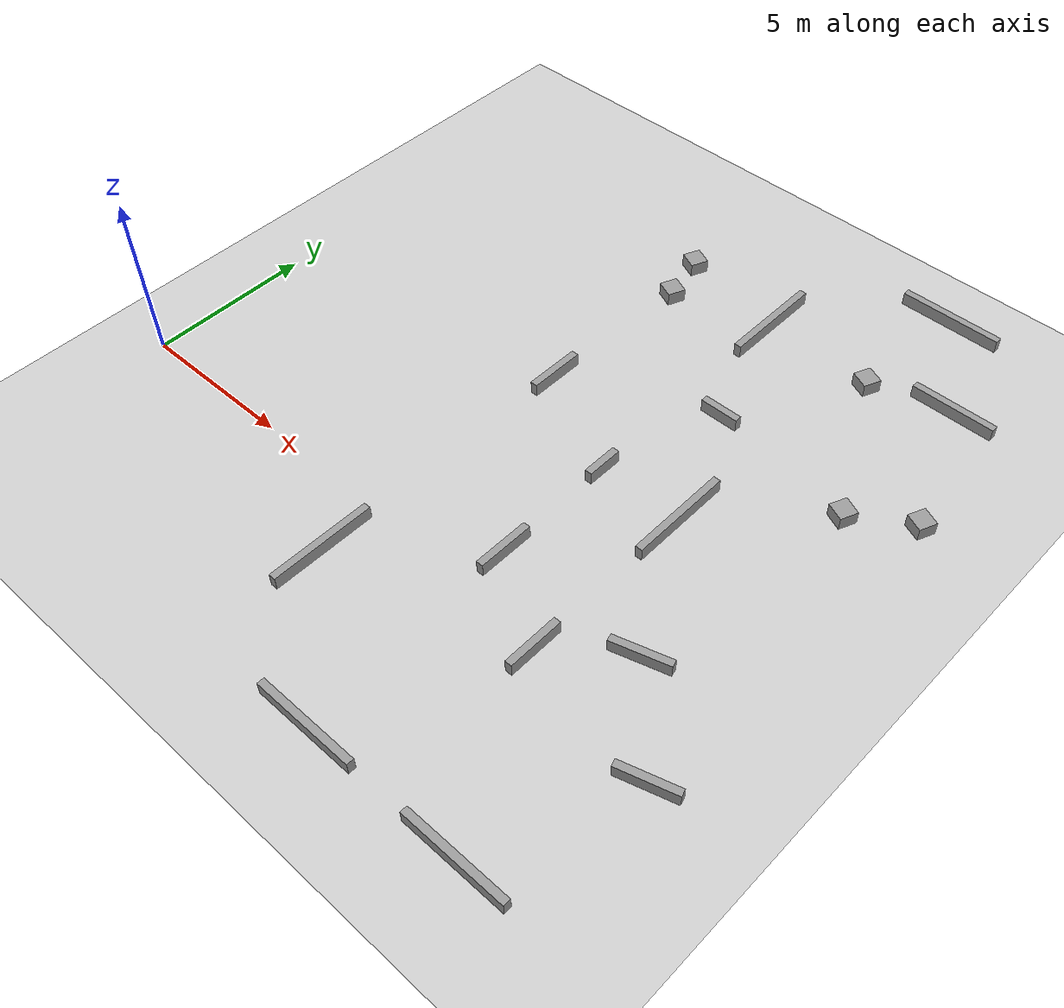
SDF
<sdf version="1.6">
 <world name="default">
  <model name="ground_plane">
   <static>1</static>
   <link name="link">
    <collision name="collision">
     <geometry><plane><normal>0 0 1</normal><size>100 100</size></plane></geometry>
     <surface>
      <contact><collide_bitmask>65535</collide_bitmask></contact>
      <friction><ode><mu>100</mu><mu2>50</mu2></ode></friction>
     </surface>
    </collision>
    <visual name="visual">
     <cast_shadows>0</cast_shadows>
     <geometry><plane><normal>0 0 1</normal><size>100 100</size></plane></geometry>
     <material>
      <script><uri>file://media/materials/scripts/gazebo.material</uri><name>Gazebo/Grey</name></script>
     </material>
    </visual>
   </link>
  </model>
  <model name="maze">
   <link name="link_4_clone_0_clone_clone_1_clone_0">
    <pose>-2.67814 -10.6624 9e-06 0 -0 0</pose>
    <inertial>
     <mass>4.30693</mass>
     <inertia><ixx>0.46587</ixx><ixy>0</ixy><ixz>0</ixz><iyy>22.6991</iyy><iyz>0</iyz><izz>22.4471</izz></inertia>
    </inertial>
    <visual name="visual">
     <geometry><box><size>3.1558 0.218362 0.4</size></box></geometry>
     <material>
      <lighting>1</lighting>
      <script><uri>file://media/materials/scripts/gazebo.material</uri><name>Gazebo/Grey</name></script>
      <ambient>0.3 0.3 0.3 1</ambient>
      <diffuse>0.7 0.7 0.7 1</diffuse>
      <specular>0.01 0.01 0.01 1</specular>
      <emissive>0 0 0 1</emissive>
      <shader type="pixel"/>
     </material>
    </visual>
    <collision name="collision">
     <geometry><box><size>3.1558 0.218362 0.4</size></box></geometry>
     <surface>
      <friction>
       <ode><mu>1</mu><mu2>1</mu2><fdir1>0 0 0</fdir1><slip1>0</slip1><slip2>0</slip2></ode>
       <torsional>
        <coefficient>1</coefficient>
        <patch_radius>0</patch_radius>
        <surface_radius>0</surface_radius>
        <use_patch_radius>1</use_patch_radius>
        <ode><slip>0</slip></ode>
       </torsional>
      </friction>
      <bounce><restitution_coefficient>0</restitution_coefficient><threshold>1e+06</threshold></bounce>
      <contact>
       <collide_without_contact>0</collide_without_contact>
       <collide_without_contact_bitmask>1</collide_without_contact_bitmask>
       <collide_bitmask>1</collide_bitmask>
       <ode>
        <soft_cfm>0</soft_cfm>
        <soft_erp>0.2</soft_erp>
        <kp>1e+13</kp>
        <kd>1</kd>
        <max_vel>0.01</max_vel>
        <min_depth>0</min_depth>
       </ode>
       <bullet>
        <split_impulse>1</split_impulse>
        <split_impulse_penetration_threshold>-0.01</split_impulse_penetration_threshold>
        <soft_cfm>0</soft_cfm>
        <soft_erp>0.2</soft_erp>
        <kp>1e+13</kp>
        <kd>1</kd>
       </bullet>
      </contact>
     </surface>
    </collision>
   </link>
   <link name="link_4_clone_0_clone_clone_1_clone_0_clone">
    <pose>2.19804 -10.643 9e-06 0 -0 0</pose>
    <inertial>
     <mass>4.30693</mass>
     <inertia><ixx>0.46587</ixx><ixy>0</ixy><ixz>0</ixz><iyy>22.6991</iyy><iyz>0</iyz><izz>22.4471</izz></inertia>
    </inertial>
    <visual name="visual">
     <geometry><box><size>3.1558 0.218362 0.4</size></box></geometry>
     <material>
      <lighting>1</lighting>
      <script><uri>file://media/materials/scripts/gazebo.material</uri><name>Gazebo/Grey</name></script>
      <ambient>0.3 0.3 0.3 1</ambient>
      <diffuse>0.7 0.7 0.7 1</diffuse>
      <specular>0.01 0.01 0.01 1</specular>
      <emissive>0 0 0 1</emissive>
      <shader type="pixel"/>
     </material>
    </visual>
    <collision name="collision">
     <geometry><box><size>3.1558 0.218362 0.4</size></box></geometry>
     <surface>
      <friction>
       <ode><mu>1</mu><mu2>1</mu2><fdir1>0 0 0</fdir1><slip1>0</slip1><slip2>0</slip2></ode>
       <torsional>
        <coefficient>1</coefficient>
        <patch_radius>0</patch_radius>
        <surface_radius>0</surface_radius>
        <use_patch_radius>1</use_patch_radius>
        <ode><slip>0</slip></ode>
       </torsional>
      </friction>
      <bounce><restitution_coefficient>0</restitution_coefficient><threshold>1e+06</threshold></bounce>
      <contact>
       <collide_without_contact>0</collide_without_contact>
       <collide_without_contact_bitmask>1</collide_without_contact_bitmask>
       <collide_bitmask>1</collide_bitmask>
       <ode>
        <soft_cfm>0</soft_cfm>
        <soft_erp>0.2</soft_erp>
        <kp>1e+13</kp>
        <kd>1</kd>
        <max_vel>0.01</max_vel>
        <min_depth>0</min_depth>
       </ode>
       <bullet>
        <split_impulse>1</split_impulse>
        <split_impulse_penetration_threshold>-0.01</split_impulse_penetration_threshold>
        <soft_cfm>0</soft_cfm>
        <soft_erp>0.2</soft_erp>
        <kp>1e+13</kp>
        <kd>1</kd>
       </bullet>
      </contact>
     </surface>
    </collision>
   </link>
   <link name="link_4_clone_0_clone_clone_1_clone_0_clone_0">
    <pose>0.695253 11.0512 9e-06 0 -0 0</pose>
    <inertial>
     <mass>4.30693</mass>
     <inertia><ixx>0.46587</ixx><ixy>0</ixy><ixz>0</ixz><iyy>22.6991</iyy><iyz>0</iyz><izz>22.4471</izz></inertia>
    </inertial>
    <visual name="visual">
     <geometry><box><size>3.1558 0.218362 0.4</size></box></geometry>
     <material>
      <lighting>1</lighting>
      <script><uri>file://media/materials/scripts/gazebo.material</uri><name>Gazebo/Grey</name></script>
      <ambient>0.3 0.3 0.3 1</ambient>
      <diffuse>0.7 0.7 0.7 1</diffuse>
      <specular>0.01 0.01 0.01 1</specular>
      <emissive>0 0 0 1</emissive>
      <shader type="pixel"/>
     </material>
    </visual>
    <collision name="collision">
     <geometry><box><size>3.1558 0.218362 0.4</size></box></geometry>
     <surface>
      <friction>
       <ode><mu>1</mu><mu2>1</mu2><fdir1>0 0 0</fdir1><slip1>0</slip1><slip2>0</slip2></ode>
       <torsional>
        <coefficient>1</coefficient>
        <patch_radius>0</patch_radius>
        <surface_radius>0</surface_radius>
        <use_patch_radius>1</use_patch_radius>
        <ode><slip>0</slip></ode>
       </torsional>
      </friction>
      <bounce><restitution_coefficient>0</restitution_coefficient><threshold>1e+06</threshold></bounce>
      <contact>
       <collide_without_contact>0</collide_without_contact>
       <collide_without_contact_bitmask>1</collide_without_contact_bitmask>
       <collide_bitmask>1</collide_bitmask>
       <ode>
        <soft_cfm>0</soft_cfm>
        <soft_erp>0.2</soft_erp>
        <kp>1e+13</kp>
        <kd>1</kd>
        <max_vel>0.01</max_vel>
        <min_depth>0</min_depth>
       </ode>
       <bullet>
        <split_impulse>1</split_impulse>
        <split_impulse_penetration_threshold>-0.01</split_impulse_penetration_threshold>
        <soft_cfm>0</soft_cfm>
        <soft_erp>0.2</soft_erp>
        <kp>1e+13</kp>
        <kd>1</kd>
       </bullet>
      </contact>
     </surface>
    </collision>
   </link>
   <link name="link_4_clone_0_clone_clone_1_clone_clone">
    <pose>2.76705 7.92871 9e-06 0 -0 0</pose>
    <inertial>
     <mass>3.50538</mass>
     <inertia><ixx>0.379168</ixx><ixy>0</ixy><ixz>0</ixz><iyy>12.3366</iyy><iyz>0</iyz><izz>12.1315</izz></inertia>
    </inertial>
    <visual name="visual">
     <geometry><box><size>2.56849 0.218362 0.4</size></box></geometry>
     <material>
      <lighting>1</lighting>
      <script><uri>file://media/materials/scripts/gazebo.material</uri><name>Gazebo/Grey</name></script>
      <ambient>0.3 0.3 0.3 1</ambient>
      <diffuse>0.7 0.7 0.7 1</diffuse>
      <specular>0.01 0.01 0.01 1</specular>
      <emissive>0 0 0 1</emissive>
      <shader type="pixel"/>
     </material>
    </visual>
    <collision name="collision">
     <geometry><box><size>2.56849 0.218362 0.4</size></box></geometry>
     <surface>
      <friction>
       <ode><mu>1</mu><mu2>1</mu2><fdir1>0 0 0</fdir1><slip1>0</slip1><slip2>0</slip2></ode>
       <torsional>
        <coefficient>1</coefficient>
        <patch_radius>0</patch_radius>
        <surface_radius>0</surface_radius>
        <use_patch_radius>1</use_patch_radius>
        <ode><slip>0</slip></ode>
       </torsional>
      </friction>
      <bounce><restitution_coefficient>0</restitution_coefficient><threshold>1e+06</threshold></bounce>
      <contact>
       <collide_without_contact>0</collide_without_contact>
       <collide_without_contact_bitmask>1</collide_without_contact_bitmask>
       <collide_bitmask>1</collide_bitmask>
       <ode>
        <soft_cfm>0</soft_cfm>
        <soft_erp>0.2</soft_erp>
        <kp>1e+13</kp>
        <kd>1</kd>
        <max_vel>0.01</max_vel>
        <min_depth>0</min_depth>
       </ode>
       <bullet>
        <split_impulse>1</split_impulse>
        <split_impulse_penetration_threshold>-0.01</split_impulse_penetration_threshold>
        <soft_cfm>0</soft_cfm>
        <soft_erp>0.2</soft_erp>
        <kp>1e+13</kp>
        <kd>1</kd>
       </bullet>
      </contact>
     </surface>
    </collision>
   </link>
   <link name="new_wall">
    <pose>-1.9 3.51 9e-06 0 -0 0</pose>
    <inertial>
     <mass>3.50538</mass>
     <inertia><ixx>0.379168</ixx><ixy>0</ixy><ixz>0</ixz><iyy>12.3366</iyy><iyz>0</iyz><izz>12.1315</izz></inertia>
    </inertial>
    <visual name="visual">
     <geometry><box><size>1.2 0.218362 0.4</size></box></geometry>
     <material>
      <lighting>1</lighting>
      <script><uri>file://media/materials/scripts/gazebo.material</uri><name>Gazebo/Grey</name></script>
      <ambient>0.3 0.3 0.3 1</ambient>
      <diffuse>0.7 0.7 0.7 1</diffuse>
      <specular>0.01 0.01 0.01 1</specular>
      <emissive>0 0 0 1</emissive>
      <shader type="pixel"/>
     </material>
    </visual>
    <collision name="collision">
     <geometry><box><size>2.56849 0.218362 0.4</size></box></geometry>
     <surface>
      <friction>
       <ode><mu>1</mu><mu2>1</mu2><fdir1>0 0 0</fdir1><slip1>0</slip1><slip2>0</slip2></ode>
       <torsional>
        <coefficient>1</coefficient>
        <patch_radius>0</patch_radius>
        <surface_radius>0</surface_radius>
        <use_patch_radius>1</use_patch_radius>
        <ode><slip>0</slip></ode>
       </torsional>
      </friction>
      <bounce><restitution_coefficient>0</restitution_coefficient><threshold>1e+06</threshold></bounce>
      <contact>
       <collide_without_contact>0</collide_without_contact>
       <collide_without_contact_bitmask>1</collide_without_contact_bitmask>
       <collide_bitmask>1</collide_bitmask>
       <ode>
        <soft_cfm>0</soft_cfm>
        <soft_erp>0.2</soft_erp>
        <kp>1e+13</kp>
        <kd>1</kd>
        <max_vel>0.01</max_vel>
        <min_depth>0</min_depth>
       </ode>
       <bullet>
        <split_impulse>1</split_impulse>
        <split_impulse_penetration_threshold>-0.01</split_impulse_penetration_threshold>
        <soft_cfm>0</soft_cfm>
        <soft_erp>0.2</soft_erp>
        <kp>1e+13</kp>
        <kd>1</kd>
       </bullet>
      </contact>
     </surface>
    </collision>
   </link>
   <link name="link_4_clone_1_clone_1">
    <pose>-6.43669 -6.98415 9e-06 0 0 -1.56693</pose>
    <inertial>
     <mass>4.30693</mass>
     <inertia><ixx>0.46587</ixx><ixy>0</ixy><ixz>0</ixz><iyy>22.6991</iyy><iyz>0</iyz><izz>22.4471</izz></inertia>
    </inertial>
    <visual name="visual">
     <geometry><box><size>3.1558 0.218362 0.4</size></box></geometry>
     <material>
      <lighting>1</lighting>
      <script><uri>file://media/materials/scripts/gazebo.material</uri><name>Gazebo/Grey</name></script>
      <ambient>0.3 0.3 0.3 1</ambient>
      <diffuse>0.7 0.7 0.7 1</diffuse>
      <specular>0.01 0.01 0.01 1</specular>
      <emissive>0 0 0 1</emissive>
      <shader type="pixel"/>
     </material>
    </visual>
    <collision name="collision">
     <geometry><box><size>3.1558 0.218362 0.4</size></box></geometry>
     <surface>
      <friction>
       <ode><mu>1</mu><mu2>1</mu2><fdir1>0 0 0</fdir1><slip1>0</slip1><slip2>0</slip2></ode>
       <torsional>
        <coefficient>1</coefficient>
        <patch_radius>0</patch_radius>
        <surface_radius>0</surface_radius>
        <use_patch_radius>1</use_patch_radius>
        <ode><slip>0</slip></ode>
       </torsional>
      </friction>
      <bounce><restitution_coefficient>0</restitution_coefficient><threshold>1e+06</threshold></bounce>
      <contact>
       <collide_without_contact>0</collide_without_contact>
       <collide_without_contact_bitmask>1</collide_without_contact_bitmask>
       <collide_bitmask>1</collide_bitmask>
       <ode>
        <soft_cfm>0</soft_cfm>
        <soft_erp>0.2</soft_erp>
        <kp>1e+13</kp>
        <kd>1</kd>
        <max_vel>0.01</max_vel>
        <min_depth>0</min_depth>
       </ode>
       <bullet>
        <split_impulse>1</split_impulse>
        <split_impulse_penetration_threshold>-0.01</split_impulse_penetration_threshold>
        <soft_cfm>0</soft_cfm>
        <soft_erp>0.2</soft_erp>
        <kp>1e+13</kp>
        <kd>1</kd>
       </bullet>
      </contact>
     </surface>
    </collision>
   </link>
   <link name="link_4_clone_1_clone_1_clone">
    <pose>-6.35585 1.56416 9e-06 0 0 -1.56693</pose>
    <inertial>
     <mass>2.3361</mass>
     <inertia><ixx>0.25269</ixx><ixy>0</ixy><ixz>0</ixz><iyy>3.75965</iyy><iyz>0</iyz><izz>3.62299</izz></inertia>
    </inertial>
    <visual name="visual">
     <geometry><box><size>1.71172 0.218362 0.4</size></box></geometry>
     <material>
      <lighting>1</lighting>
      <script><uri>file://media/materials/scripts/gazebo.material</uri><name>Gazebo/Grey</name></script>
      <ambient>0.3 0.3 0.3 1</ambient>
      <diffuse>0.7 0.7 0.7 1</diffuse>
      <specular>0.01 0.01 0.01 1</specular>
      <emissive>0 0 0 1</emissive>
      <shader type="pixel"/>
     </material>
    </visual>
    <collision name="collision">
     <geometry><box><size>1.71172 0.218362 0.4</size></box></geometry>
     <surface>
      <friction>
       <ode><mu>1</mu><mu2>1</mu2><fdir1>0 0 0</fdir1><slip1>0</slip1><slip2>0</slip2></ode>
       <torsional>
        <coefficient>1</coefficient>
        <patch_radius>0</patch_radius>
        <surface_radius>0</surface_radius>
        <use_patch_radius>1</use_patch_radius>
        <ode><slip>0</slip></ode>
       </torsional>
      </friction>
      <bounce><restitution_coefficient>0</restitution_coefficient><threshold>1e+06</threshold></bounce>
      <contact>
       <collide_without_contact>0</collide_without_contact>
       <collide_without_contact_bitmask>1</collide_without_contact_bitmask>
       <collide_bitmask>1</collide_bitmask>
       <ode>
        <soft_cfm>0</soft_cfm>
        <soft_erp>0.2</soft_erp>
        <kp>1e+13</kp>
        <kd>1</kd>
        <max_vel>0.01</max_vel>
        <min_depth>0</min_depth>
       </ode>
       <bullet>
        <split_impulse>1</split_impulse>
        <split_impulse_penetration_threshold>-0.01</split_impulse_penetration_threshold>
        <soft_cfm>0</soft_cfm>
        <soft_erp>0.2</soft_erp>
        <kp>1e+13</kp>
        <kd>1</kd>
       </bullet>
      </contact>
     </surface>
    </collision>
   </link>
   <link name="link_4_clone_1_clone_1_clone_0">
    <pose>-0.36051 -0.154697 9e-06 0 0 -1.56693</pose>
    <inertial>
     <mass>4.30693</mass>
     <inertia><ixx>0.46587</ixx><ixy>0</ixy><ixz>0</ixz><iyy>22.6991</iyy><iyz>0</iyz><izz>22.4471</izz></inertia>
    </inertial>
    <visual name="visual">
     <geometry><box><size>3.1558 0.218362 0.4</size></box></geometry>
     <material>
      <lighting>1</lighting>
      <script><uri>file://media/materials/scripts/gazebo.material</uri><name>Gazebo/Grey</name></script>
      <ambient>0.3 0.3 0.3 1</ambient>
      <diffuse>0.7 0.7 0.7 1</diffuse>
      <specular>0.01 0.01 0.01 1</specular>
      <emissive>0 0 0 1</emissive>
      <shader type="pixel"/>
     </material>
    </visual>
    <collision name="collision">
     <geometry><box><size>3.1558 0.218362 0.4</size></box></geometry>
     <surface>
      <friction>
       <ode><mu>1</mu><mu2>1</mu2><fdir1>0 0 0</fdir1><slip1>0</slip1><slip2>0</slip2></ode>
       <torsional>
        <coefficient>1</coefficient>
        <patch_radius>0</patch_radius>
        <surface_radius>0</surface_radius>
        <use_patch_radius>1</use_patch_radius>
        <ode><slip>0</slip></ode>
       </torsional>
      </friction>
      <bounce><restitution_coefficient>0</restitution_coefficient><threshold>1e+06</threshold></bounce>
      <contact>
       <collide_without_contact>0</collide_without_contact>
       <collide_without_contact_bitmask>1</collide_without_contact_bitmask>
       <collide_bitmask>1</collide_bitmask>
       <ode>
        <soft_cfm>0</soft_cfm>
        <soft_erp>0.2</soft_erp>
        <kp>1e+13</kp>
        <kd>1</kd>
        <max_vel>0.01</max_vel>
        <min_depth>0</min_depth>
       </ode>
       <bullet>
        <split_impulse>1</split_impulse>
        <split_impulse_penetration_threshold>-0.01</split_impulse_penetration_threshold>
        <soft_cfm>0</soft_cfm>
        <soft_erp>0.2</soft_erp>
        <kp>1e+13</kp>
        <kd>1</kd>
       </bullet>
      </contact>
     </surface>
    </collision>
   </link>
   <link name="link_4_clone_1_clone_1_clone_2">
    <pose>-3.1358 7.375 9e-06 0 0 -1.56693</pose>
    <inertial>
     <mass>4.30693</mass>
     <inertia><ixx>0.46587</ixx><ixy>0</ixy><ixz>0</ixz><iyy>22.6991</iyy><iyz>0</iyz><izz>22.4471</izz></inertia>
    </inertial>
    <visual name="visual">
     <geometry><box><size>3.1558 0.218362 0.4</size></box></geometry>
     <material>
      <lighting>1</lighting>
      <script><uri>file://media/materials/scripts/gazebo.material</uri><name>Gazebo/Grey</name></script>
      <ambient>0.3 0.3 0.3 1</ambient>
      <diffuse>0.7 0.7 0.7 1</diffuse>
      <specular>0.01 0.01 0.01 1</specular>
      <emissive>0 0 0 1</emissive>
      <shader type="pixel"/>
     </material>
    </visual>
    <collision name="collision">
     <geometry><box><size>3.1558 0.218362 0.4</size></box></geometry>
     <surface>
      <friction>
       <ode><mu>1</mu><mu2>1</mu2><fdir1>0 0 0</fdir1><slip1>0</slip1><slip2>0</slip2></ode>
       <torsional>
        <coefficient>1</coefficient>
        <patch_radius>0</patch_radius>
        <surface_radius>0</surface_radius>
        <use_patch_radius>1</use_patch_radius>
        <ode><slip>0</slip></ode>
       </torsional>
      </friction>
      <bounce><restitution_coefficient>0</restitution_coefficient><threshold>1e+06</threshold></bounce>
      <contact>
       <collide_without_contact>0</collide_without_contact>
       <collide_without_contact_bitmask>1</collide_without_contact_bitmask>
       <collide_bitmask>1</collide_bitmask>
       <ode>
        <soft_cfm>0</soft_cfm>
        <soft_erp>0.2</soft_erp>
        <kp>1e+13</kp>
        <kd>1</kd>
        <max_vel>0.01</max_vel>
        <min_depth>0</min_depth>
       </ode>
       <bullet>
        <split_impulse>1</split_impulse>
        <split_impulse_penetration_threshold>-0.01</split_impulse_penetration_threshold>
        <soft_cfm>0</soft_cfm>
        <soft_erp>0.2</soft_erp>
        <kp>1e+13</kp>
        <kd>1</kd>
       </bullet>
      </contact>
     </surface>
    </collision>
   </link>
   <link name="link_4_clone_1_clone_1_clone_clone">
    <pose>-3.01465 -0.148136 9e-06 0 0 -1.56693</pose>
    <inertial>
     <mass>1.50003</mass>
     <inertia>
      <ixx>0.162255</ixx>
      <ixy>0</ixy>
      <ixz>0</ixz>
      <iyy>1.06881</iyy>
      <iyz>0</iyz>
      <izz>0.981058</izz>
     </inertia>
    </inertial>
    <visual name="visual">
     <geometry><box><size>1.09911 0.218362 0.4</size></box></geometry>
     <material>
      <lighting>1</lighting>
      <script><uri>file://media/materials/scripts/gazebo.material</uri><name>Gazebo/Grey</name></script>
      <ambient>0.3 0.3 0.3 1</ambient>
      <diffuse>0.7 0.7 0.7 1</diffuse>
      <specular>0.01 0.01 0.01 1</specular>
      <emissive>0 0 0 1</emissive>
      <shader type="pixel"/>
     </material>
    </visual>
    <collision name="collision">
     <geometry><box><size>1.09911 0.218362 0.4</size></box></geometry>
     <surface>
      <friction>
       <ode><mu>1</mu><mu2>1</mu2><fdir1>0 0 0</fdir1><slip1>0</slip1><slip2>0</slip2></ode>
       <torsional>
        <coefficient>1</coefficient>
        <patch_radius>0</patch_radius>
        <surface_radius>0</surface_radius>
        <use_patch_radius>1</use_patch_radius>
        <ode><slip>0</slip></ode>
       </torsional>
      </friction>
      <bounce><restitution_coefficient>0</restitution_coefficient><threshold>1e+06</threshold></bounce>
      <contact>
       <collide_without_contact>0</collide_without_contact>
       <collide_without_contact_bitmask>1</collide_without_contact_bitmask>
       <collide_bitmask>1</collide_bitmask>
       <ode>
        <soft_cfm>0</soft_cfm>
        <soft_erp>0.2</soft_erp>
        <kp>1e+13</kp>
        <kd>1</kd>
        <max_vel>0.01</max_vel>
        <min_depth>0</min_depth>
       </ode>
       <bullet>
        <split_impulse>1</split_impulse>
        <split_impulse_penetration_threshold>-0.01</split_impulse_penetration_threshold>
        <soft_cfm>0</soft_cfm>
        <soft_erp>0.2</soft_erp>
        <kp>1e+13</kp>
        <kd>1</kd>
       </bullet>
      </contact>
     </surface>
    </collision>
   </link>
   <link name="link_4_clone_1_clone_1_clone_clone_0">
    <pose>-2.95631 -3.9379 9e-06 0 0 -1.56693</pose>
    <inertial>
     <mass>2.3361</mass>
     <inertia><ixx>0.25269</ixx><ixy>0</ixy><ixz>0</ixz><iyy>3.75965</iyy><iyz>0</iyz><izz>3.62299</izz></inertia>
    </inertial>
    <visual name="visual">
     <geometry><box><size>1.71172 0.218362 0.4</size></box></geometry>
     <material>
      <lighting>1</lighting>
      <script><uri>file://media/materials/scripts/gazebo.material</uri><name>Gazebo/Grey</name></script>
      <ambient>0.3 0.3 0.3 1</ambient>
      <diffuse>0.7 0.7 0.7 1</diffuse>
      <specular>0.01 0.01 0.01 1</specular>
      <emissive>0 0 0 1</emissive>
      <shader type="pixel"/>
     </material>
    </visual>
    <collision name="collision">
     <geometry><box><size>1.71172 0.218362 0.4</size></box></geometry>
     <surface>
      <friction>
       <ode><mu>1</mu><mu2>1</mu2><fdir1>0 0 0</fdir1><slip1>0</slip1><slip2>0</slip2></ode>
       <torsional>
        <coefficient>1</coefficient>
        <patch_radius>0</patch_radius>
        <surface_radius>0</surface_radius>
        <use_patch_radius>1</use_patch_radius>
        <ode><slip>0</slip></ode>
       </torsional>
      </friction>
      <bounce><restitution_coefficient>0</restitution_coefficient><threshold>1e+06</threshold></bounce>
      <contact>
       <collide_without_contact>0</collide_without_contact>
       <collide_without_contact_bitmask>1</collide_without_contact_bitmask>
       <collide_bitmask>1</collide_bitmask>
       <ode>
        <soft_cfm>0</soft_cfm>
        <soft_erp>0.2</soft_erp>
        <kp>1e+13</kp>
        <kd>1</kd>
        <max_vel>0.01</max_vel>
        <min_depth>0</min_depth>
       </ode>
       <bullet>
        <split_impulse>1</split_impulse>
        <split_impulse_penetration_threshold>-0.01</split_impulse_penetration_threshold>
        <soft_cfm>0</soft_cfm>
        <soft_erp>0.2</soft_erp>
        <kp>1e+13</kp>
        <kd>1</kd>
       </bullet>
      </contact>
     </surface>
    </collision>
   </link>
   <link name="link_4_clone_1_clone_1_clone_clone_0_clone">
    <pose>4.03057 -6.47031 9e-06 0 -0 0.2833</pose>
    <inertial>
     <mass>2.3361</mass>
     <inertia><ixx>0.25269</ixx><ixy>0</ixy><ixz>0</ixz><iyy>3.75965</iyy><iyz>0</iyz><izz>3.62299</izz></inertia>
    </inertial>
    <visual name="visual">
     <geometry><box><size>1.71172 0.218362 0.4</size></box></geometry>
     <material>
      <lighting>1</lighting>
      <script><uri>file://media/materials/scripts/gazebo.material</uri><name>Gazebo/Grey</name></script>
      <ambient>0.3 0.3 0.3 1</ambient>
      <diffuse>0.7 0.7 0.7 1</diffuse>
      <specular>0.01 0.01 0.01 1</specular>
      <emissive>0 0 0 1</emissive>
      <shader type="pixel"/>
     </material>
    </visual>
    <collision name="collision">
     <geometry><box><size>1.71172 0.218362 0.4</size></box></geometry>
     <surface>
      <friction>
       <ode><mu>1</mu><mu2>1</mu2><fdir1>0 0 0</fdir1><slip1>0</slip1><slip2>0</slip2></ode>
       <torsional>
        <coefficient>1</coefficient>
        <patch_radius>0</patch_radius>
        <surface_radius>0</surface_radius>
        <use_patch_radius>1</use_patch_radius>
        <ode><slip>0</slip></ode>
       </torsional>
      </friction>
      <bounce><restitution_coefficient>0</restitution_coefficient><threshold>1e+06</threshold></bounce>
      <contact>
       <collide_without_contact>0</collide_without_contact>
       <collide_without_contact_bitmask>1</collide_without_contact_bitmask>
       <collide_bitmask>1</collide_bitmask>
       <ode>
        <soft_cfm>0</soft_cfm>
        <soft_erp>0.2</soft_erp>
        <kp>1e+13</kp>
        <kd>1</kd>
        <max_vel>0.01</max_vel>
        <min_depth>0</min_depth>
       </ode>
       <bullet>
        <split_impulse>1</split_impulse>
        <split_impulse_penetration_threshold>-0.01</split_impulse_penetration_threshold>
        <soft_cfm>0</soft_cfm>
        <soft_erp>0.2</soft_erp>
        <kp>1e+13</kp>
        <kd>1</kd>
       </bullet>
      </contact>
     </surface>
    </collision>
   </link>
   <link name="link_4_clone_1_clone_1_clone_clone_0_clone_0">
    <pose>-0.349699 -5.56946 9e-06 0 0 -1.56693</pose>
    <inertial>
     <mass>2.3361</mass>
     <inertia><ixx>0.25269</ixx><ixy>0</ixy><ixz>0</ixz><iyy>3.75965</iyy><iyz>0</iyz><izz>3.62299</izz></inertia>
    </inertial>
    <visual name="visual">
     <geometry><box><size>1.71172 0.218362 0.4</size></box></geometry>
     <material>
      <lighting>1</lighting>
      <script><uri>file://media/materials/scripts/gazebo.material</uri><name>Gazebo/Grey</name></script>
      <ambient>0.3 0.3 0.3 1</ambient>
      <diffuse>0.7 0.7 0.7 1</diffuse>
      <specular>0.01 0.01 0.01 1</specular>
      <emissive>0 0 0 1</emissive>
      <shader type="pixel"/>
     </material>
    </visual>
    <collision name="collision">
     <geometry><box><size>1.71172 0.218362 0.4</size></box></geometry>
     <surface>
      <friction>
       <ode><mu>1</mu><mu2>1</mu2><fdir1>0 0 0</fdir1><slip1>0</slip1><slip2>0</slip2></ode>
       <torsional>
        <coefficient>1</coefficient>
        <patch_radius>0</patch_radius>
        <surface_radius>0</surface_radius>
        <use_patch_radius>1</use_patch_radius>
        <ode><slip>0</slip></ode>
       </torsional>
      </friction>
      <bounce><restitution_coefficient>0</restitution_coefficient><threshold>1e+06</threshold></bounce>
      <contact>
       <collide_without_contact>0</collide_without_contact>
       <collide_without_contact_bitmask>1</collide_without_contact_bitmask>
       <collide_bitmask>1</collide_bitmask>
       <ode>
        <soft_cfm>0</soft_cfm>
        <soft_erp>0.2</soft_erp>
        <kp>1e+13</kp>
        <kd>1</kd>
        <max_vel>0.01</max_vel>
        <min_depth>0</min_depth>
       </ode>
       <bullet>
        <split_impulse>1</split_impulse>
        <split_impulse_penetration_threshold>-0.01</split_impulse_penetration_threshold>
        <soft_cfm>0</soft_cfm>
        <soft_erp>0.2</soft_erp>
        <kp>1e+13</kp>
        <kd>1</kd>
       </bullet>
      </contact>
     </surface>
    </collision>
   </link>
   <link name="link_4_clone_1_clone_1_clone_clone_0_clone_clone">
    <pose>1.7146 -4.01354 9e-06 0 -0 0.2833</pose>
    <inertial>
     <mass>2.3361</mass>
     <inertia><ixx>0.25269</ixx><ixy>0</ixy><ixz>0</ixz><iyy>3.75965</iyy><iyz>0</iyz><izz>3.62299</izz></inertia>
    </inertial>
    <visual name="visual">
     <geometry><box><size>1.71172 0.218362 0.4</size></box></geometry>
     <material>
      <lighting>1</lighting>
      <script><uri>file://media/materials/scripts/gazebo.material</uri><name>Gazebo/Grey</name></script>
      <ambient>0.3 0.3 0.3 1</ambient>
      <diffuse>0.7 0.7 0.7 1</diffuse>
      <specular>0.01 0.01 0.01 1</specular>
      <emissive>0 0 0 1</emissive>
      <shader type="pixel"/>
     </material>
    </visual>
    <collision name="collision">
     <geometry><box><size>1.71172 0.218362 0.4</size></box></geometry>
     <surface>
      <friction>
       <ode><mu>1</mu><mu2>1</mu2><fdir1>0 0 0</fdir1><slip1>0</slip1><slip2>0</slip2></ode>
       <torsional>
        <coefficient>1</coefficient>
        <patch_radius>0</patch_radius>
        <surface_radius>0</surface_radius>
        <use_patch_radius>1</use_patch_radius>
        <ode><slip>0</slip></ode>
       </torsional>
      </friction>
      <bounce><restitution_coefficient>0</restitution_coefficient><threshold>1e+06</threshold></bounce>
      <contact>
       <collide_without_contact>0</collide_without_contact>
       <collide_without_contact_bitmask>1</collide_without_contact_bitmask>
       <collide_bitmask>1</collide_bitmask>
       <ode>
        <soft_cfm>0</soft_cfm>
        <soft_erp>0.2</soft_erp>
        <kp>1e+13</kp>
        <kd>1</kd>
        <max_vel>0.01</max_vel>
        <min_depth>0</min_depth>
       </ode>
       <bullet>
        <split_impulse>1</split_impulse>
        <split_impulse_penetration_threshold>-0.01</split_impulse_penetration_threshold>
        <soft_cfm>0</soft_cfm>
        <soft_erp>0.2</soft_erp>
        <kp>1e+13</kp>
        <kd>1</kd>
       </bullet>
      </contact>
     </surface>
    </collision>
   </link>
   <link name="engine_1">
    <pose>-6.5 8 9e-06 0 0 -0.406538</pose>
    <inertial>
     <mass>1.94722</mass>
     <inertia><ixx>0.463684</ixx><ixy>0</ixy><ixz>0</ixz><iyy>0.4935</iyy><iyz>0</iyz><izz>0.632648</izz></inertia>
    </inertial>
    <visual name="visual">
     <geometry><box><size>0.571492 0.545164 0.4</size></box></geometry>
     <material>
      <lighting>1</lighting>
      <script><uri>file://media/materials/scripts/gazebo.material</uri><name>Gazebo/Grey</name></script>
      <ambient>0.3 0.3 0.3 1</ambient>
      <diffuse>0.7 0.7 0.7 1</diffuse>
      <specular>0.01 0.01 0.01 1</specular>
      <emissive>0 0 0 1</emissive>
     </material>
    </visual>
    <collision name="collision">
     <geometry><box><size>0.571492 0.545164 0.4</size></box></geometry>
     <surface>
      <friction>
       <ode><mu>1</mu><mu2>1</mu2><fdir1>0 0 0</fdir1><slip1>0</slip1><slip2>0</slip2></ode>
       <torsional>
        <coefficient>1</coefficient>
        <patch_radius>0</patch_radius>
        <surface_radius>0</surface_radius>
        <use_patch_radius>1</use_patch_radius>
        <ode><slip>0</slip></ode>
       </torsional>
      </friction>
      <bounce><restitution_coefficient>0</restitution_coefficient><threshold>1e+06</threshold></bounce>
      <contact>
       <collide_without_contact>0</collide_without_contact>
       <collide_without_contact_bitmask>1</collide_without_contact_bitmask>
       <collide_bitmask>1</collide_bitmask>
       <ode>
        <soft_cfm>0</soft_cfm>
        <soft_erp>0.2</soft_erp>
        <kp>1e+13</kp>
        <kd>1</kd>
        <max_vel>0.01</max_vel>
        <min_depth>0</min_depth>
       </ode>
       <bullet>
        <split_impulse>1</split_impulse>
        <split_impulse_penetration_threshold>-0.01</split_impulse_penetration_threshold>
        <soft_cfm>0</soft_cfm>
        <soft_erp>0.2</soft_erp>
        <kp>1e+13</kp>
        <kd>1</kd>
       </bullet>
      </contact>
     </surface>
    </collision>
   </link>
   <link name="engine_2">
    <pose>-6.1551 6.5 9e-06 0 0 -0.406538</pose>
    <inertial>
     <mass>1.94722</mass>
     <inertia><ixx>0.463684</ixx><ixy>0</ixy><ixz>0</ixz><iyy>0.4935</iyy><iyz>0</iyz><izz>0.632648</izz></inertia>
    </inertial>
    <visual name="visual">
     <geometry><box><size>0.571492 0.545164 0.4</size></box></geometry>
     <material>
      <lighting>1</lighting>
      <script><uri>file://media/materials/scripts/gazebo.material</uri><name>Gazebo/Grey</name></script>
      <ambient>0.3 0.3 0.3 1</ambient>
      <diffuse>0.7 0.7 0.7 1</diffuse>
      <specular>0.01 0.01 0.01 1</specular>
      <emissive>0 0 0 1</emissive>
     </material>
    </visual>
    <collision name="collision">
     <geometry><box><size>0.571492 0.545164 0.4</size></box></geometry>
     <surface>
      <friction>
       <ode><mu>1</mu><mu2>1</mu2><fdir1>0 0 0</fdir1><slip1>0</slip1><slip2>0</slip2></ode>
       <torsional>
        <coefficient>1</coefficient>
        <patch_radius>0</patch_radius>
        <surface_radius>0</surface_radius>
        <use_patch_radius>1</use_patch_radius>
        <ode><slip>0</slip></ode>
       </torsional>
      </friction>
      <bounce><restitution_coefficient>0</restitution_coefficient><threshold>1e+06</threshold></bounce>
      <contact>
       <collide_without_contact>0</collide_without_contact>
       <collide_without_contact_bitmask>1</collide_without_contact_bitmask>
       <collide_bitmask>1</collide_bitmask>
       <ode>
        <soft_cfm>0</soft_cfm>
        <soft_erp>0.2</soft_erp>
        <kp>1e+13</kp>
        <kd>1</kd>
        <max_vel>0.01</max_vel>
        <min_depth>0</min_depth>
       </ode>
       <bullet>
        <split_impulse>1</split_impulse>
        <split_impulse_penetration_threshold>-0.01</split_impulse_penetration_threshold>
        <soft_cfm>0</soft_cfm>
        <soft_erp>0.2</soft_erp>
        <kp>1e+13</kp>
        <kd>1</kd>
       </bullet>
      </contact>
     </surface>
    </collision>
   </link>
   <link name="link_6_clone_clone">
    <pose>2.67865 2.83156 9e-06 0 0 -0.406538</pose>
    <inertial>
     <mass>1.94722</mass>
     <inertia><ixx>0.463684</ixx><ixy>0</ixy><ixz>0</ixz><iyy>0.4935</iyy><iyz>0</iyz><izz>0.632648</izz></inertia>
    </inertial>
    <visual name="visual">
     <geometry><box><size>0.571492 0.545164 0.4</size></box></geometry>
     <material>
      <lighting>1</lighting>
      <script><uri>file://media/materials/scripts/gazebo.material</uri><name>Gazebo/Grey</name></script>
      <ambient>0.3 0.3 0.3 1</ambient>
      <diffuse>0.7 0.7 0.7 1</diffuse>
      <specular>0.01 0.01 0.01 1</specular>
      <emissive>0 0 0 1</emissive>
      <shader type="pixel"/>
     </material>
    </visual>
    <collision name="collision">
     <geometry><box><size>0.571492 0.545164 0.4</size></box></geometry>
     <surface>
      <friction>
       <ode><mu>1</mu><mu2>1</mu2><fdir1>0 0 0</fdir1><slip1>0</slip1><slip2>0</slip2></ode>
       <torsional>
        <coefficient>1</coefficient>
        <patch_radius>0</patch_radius>
        <surface_radius>0</surface_radius>
        <use_patch_radius>1</use_patch_radius>
        <ode><slip>0</slip></ode>
       </torsional>
      </friction>
      <bounce><restitution_coefficient>0</restitution_coefficient><threshold>1e+06</threshold></bounce>
      <contact>
       <collide_without_contact>0</collide_without_contact>
       <collide_without_contact_bitmask>1</collide_without_contact_bitmask>
       <collide_bitmask>1</collide_bitmask>
       <ode>
        <soft_cfm>0</soft_cfm>
        <soft_erp>0.2</soft_erp>
        <kp>1e+13</kp>
        <kd>1</kd>
        <max_vel>0.01</max_vel>
        <min_depth>0</min_depth>
       </ode>
       <bullet>
        <split_impulse>1</split_impulse>
        <split_impulse_penetration_threshold>-0.01</split_impulse_penetration_threshold>
        <soft_cfm>0</soft_cfm>
        <soft_erp>0.2</soft_erp>
        <kp>1e+13</kp>
        <kd>1</kd>
       </bullet>
      </contact>
     </surface>
    </collision>
   </link>
   <link name="link_6_clone_clone_0">
    <pose>4.37408 3.90111 9e-06 0 0 -0.406538</pose>
    <inertial>
     <mass>1.94722</mass>
     <inertia><ixx>0.463684</ixx><ixy>0</ixy><ixz>0</ixz><iyy>0.4935</iyy><iyz>0</iyz><izz>0.632648</izz></inertia>
    </inertial>
    <visual name="visual">
     <geometry><box><size>0.571492 0.545164 0.4</size></box></geometry>
     <material>
      <lighting>1</lighting>
      <script><uri>file://media/materials/scripts/gazebo.material</uri><name>Gazebo/Grey</name></script>
      <ambient>0.3 0.3 0.3 1</ambient>
      <diffuse>0.7 0.7 0.7 1</diffuse>
      <specular>0.01 0.01 0.01 1</specular>
      <emissive>0 0 0 1</emissive>
      <shader type="pixel"/>
     </material>
    </visual>
    <collision name="collision">
     <geometry><box><size>0.571492 0.545164 0.4</size></box></geometry>
     <surface>
      <friction>
       <ode><mu>1</mu><mu2>1</mu2><fdir1>0 0 0</fdir1><slip1>0</slip1><slip2>0</slip2></ode>
       <torsional>
        <coefficient>1</coefficient>
        <patch_radius>0</patch_radius>
        <surface_radius>0</surface_radius>
        <use_patch_radius>1</use_patch_radius>
        <ode><slip>0</slip></ode>
       </torsional>
      </friction>
      <bounce><restitution_coefficient>0</restitution_coefficient><threshold>1e+06</threshold></bounce>
      <contact>
       <collide_without_contact>0</collide_without_contact>
       <collide_without_contact_bitmask>1</collide_without_contact_bitmask>
       <collide_bitmask>1</collide_bitmask>
       <ode>
        <soft_cfm>0</soft_cfm>
        <soft_erp>0.2</soft_erp>
        <kp>1e+13</kp>
        <kd>1</kd>
        <max_vel>0.01</max_vel>
        <min_depth>0</min_depth>
       </ode>
       <bullet>
        <split_impulse>1</split_impulse>
        <split_impulse_penetration_threshold>-0.01</split_impulse_penetration_threshold>
        <soft_cfm>0</soft_cfm>
        <soft_erp>0.2</soft_erp>
        <kp>1e+13</kp>
        <kd>1</kd>
       </bullet>
      </contact>
     </surface>
    </collision>
   </link>
   <link name="link_6_clone_clone_0_clone">
    <pose>0.353494 7.24728 9e-06 0 0 -0.406538</pose>
    <inertial>
     <mass>1.94722</mass>
     <inertia><ixx>0.463684</ixx><ixy>0</ixy><ixz>0</ixz><iyy>0.4935</iyy><iyz>0</iyz><izz>0.632648</izz></inertia>
    </inertial>
    <visual name="visual">
     <geometry><box><size>0.571492 0.545164 0.4</size></box></geometry>
     <material>
      <lighting>1</lighting>
      <script><uri>file://media/materials/scripts/gazebo.material</uri><name>Gazebo/Grey</name></script>
      <ambient>0.3 0.3 0.3 1</ambient>
      <diffuse>0.7 0.7 0.7 1</diffuse>
      <specular>0.01 0.01 0.01 1</specular>
      <emissive>0 0 0 1</emissive>
      <shader type="pixel"/>
     </material>
    </visual>
    <collision name="collision">
     <geometry><box><size>0.571492 0.545164 0.4</size></box></geometry>
     <surface>
      <friction>
       <ode><mu>1</mu><mu2>1</mu2><fdir1>0 0 0</fdir1><slip1>0</slip1><slip2>0</slip2></ode>
       <torsional>
        <coefficient>1</coefficient>
        <patch_radius>0</patch_radius>
        <surface_radius>0</surface_radius>
        <use_patch_radius>1</use_patch_radius>
        <ode><slip>0</slip></ode>
       </torsional>
      </friction>
      <bounce><restitution_coefficient>0</restitution_coefficient><threshold>1e+06</threshold></bounce>
      <contact>
       <collide_without_contact>0</collide_without_contact>
       <collide_without_contact_bitmask>1</collide_without_contact_bitmask>
       <collide_bitmask>1</collide_bitmask>
       <ode>
        <soft_cfm>0</soft_cfm>
        <soft_erp>0.2</soft_erp>
        <kp>1e+13</kp>
        <kd>1</kd>
        <max_vel>0.01</max_vel>
        <min_depth>0</min_depth>
       </ode>
       <bullet>
        <split_impulse>1</split_impulse>
        <split_impulse_penetration_threshold>-0.01</split_impulse_penetration_threshold>
        <soft_cfm>0</soft_cfm>
        <soft_erp>0.2</soft_erp>
        <kp>1e+13</kp>
        <kd>1</kd>
       </bullet>
      </contact>
     </surface>
    </collision>
   </link>
   <static>0</static>
   <pose>16 5 0.499991 0 -0 0</pose>
  </model>
 </world>
</sdf>
